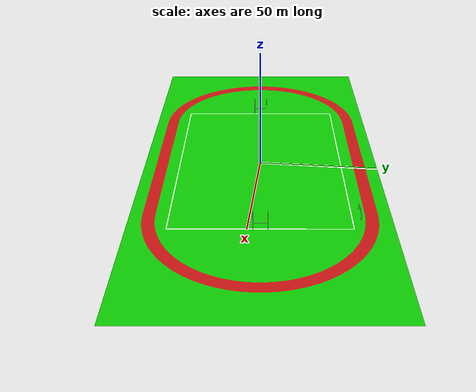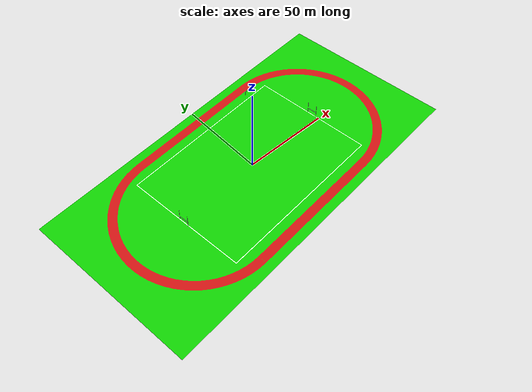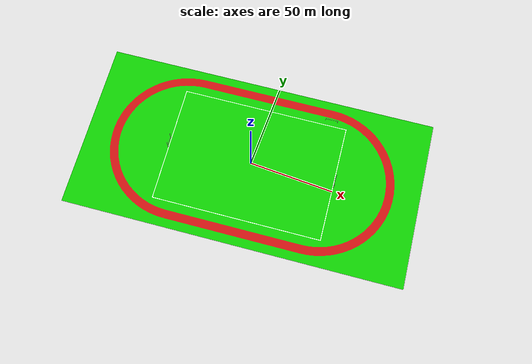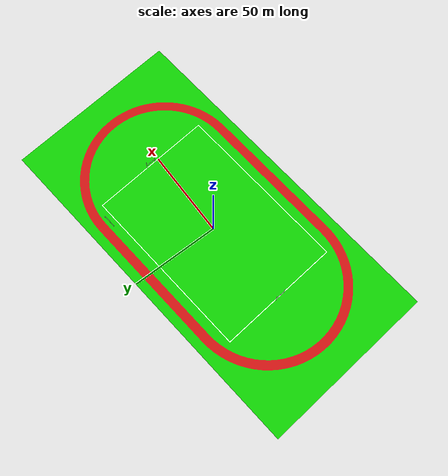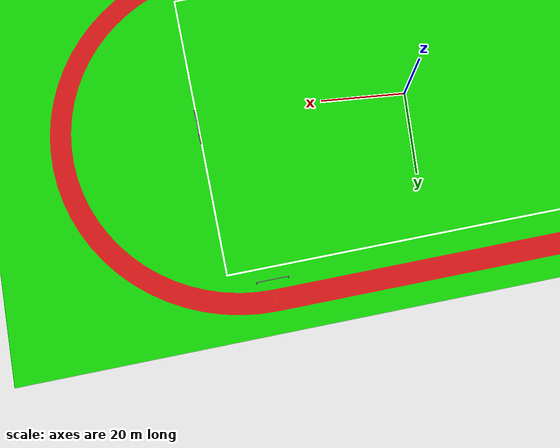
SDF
<?xml version="1.0" ?>
<sdf version="1.5">
  <!-- We use a custom world for the rrbot so that the camera angle is launched correctly -->

  <world name="default">

    <!-- Global light source -->
    <include>
      <uri>model://sun</uri>
    </include>

  <model name="ground_plane">
	<pose>0 0 0 0 0 0.1</pose>
    <static>true</static>
    <link name="link">
      <collision name="collision">
        <geometry>
          <plane>
            <normal>0 0 1</normal>
            <size>150 100</size>
          </plane>
        </geometry>
        <surface>
          <contact>
             <collide_bitmask>0xffff</collide_bitmask>
          </contact>
          <friction>
            <ode>
              <mu>100</mu>
              <mu2>50</mu2>
            </ode>
          </friction>
        </surface>
      </collision>
      <visual name="visual">
        <cast_shadows>false</cast_shadows>
        <geometry>
          <mesh>

          	<uri>model://robot_saturne/meshes/terrain_3.dae</uri>
			<scale>1 1 1</scale>
      	  </mesh>
        </geometry>
      </visual>
    </link>
  </model>

  <include>
  	<pose>36 41.8 0 0.000000 0 1.67</pose>
	<uri>model://poteaux_foot</uri>
  </include>

<include>
  	<pose>-49.75 -5 0 0.000000 0 0.1</pose>
	<uri>model://poteaux_rugby</uri>
  </include>

<include>
  	<pose>49.75 5 0 0.000000 0 0.1</pose>
	<uri>model://poteaux_rugby</uri>
  </include>

    <!-- Focus camera on tall pendulum -->
    <gui fullscreen='0'>
      <camera name='user_camera'>
        <pose>4.927360 -4.376610 3.740080 0.000000 0.275643 2.356190</pose>
        <view_controller>orbit</view_controller>
      </camera>
    </gui>

  </world>
</sdf>

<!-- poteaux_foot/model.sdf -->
<sdf version='1.4'>
  <model name="Poteaux_foot">
	  <static>true</static>

	  <link name='poteau_droit'>
      <pose>0 -3.66 0 0 0 0</pose>

      <collision name='collision'>
        <geometry>
           <box>
            <size>0.2 0.2 8</size>
          </box>
        </geometry>
      </collision>

      <visual name='visual'>
          <pose>0 3.66 0 0 0 0</pose>

        	<geometry>
          	<mesh>
          		<uri>model://poteaux_foot/meshes/poteaux_foot.dae</uri>
          		<scale>1 1 1</scale>
        	</mesh>

        	</geometry>
      </visual>
	  </link>

    <link name='poteau_gauche'>
      <pose>0 3.66 0 0 0 0</pose>

      <collision name='collision'>
        <geometry>
           <box>
            <size>0.2 0.2 8</size>
          </box>
        </geometry>
      </collision>

    </link>
  </model>
</sdf>

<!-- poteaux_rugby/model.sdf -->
<sdf version='1.5'>
  <model name="Poteaux_rugby">
	  <static>true</static>

	  <link name='poteau_droit'>
      <pose>0 -2.8 0 0 0 0</pose>

      <collision name='collision'>
        <geometry>
           <box>
            <size>0.2 0.2 8</size>
          </box>
        </geometry>
      </collision>

      <visual name='visual'>
          <pose>0 2.8 0 0 0 0</pose>

        	<geometry>
          	<mesh>
          		<uri>model://poteaux_rugby/meshes/poteaux_rugby.dae</uri>
          		<scale>1 1 1</scale>
        	</mesh>

        	</geometry>
      </visual>
	  </link>

    <link name='poteau_gauche'>
      <pose>0 2.8 0 0 0 0</pose>

      <collision name='collision'>
        <geometry>
           <box>
            <size>0.2 0.2 8</size>
          </box>
        </geometry>
      </collision>

    </link>
  </model>
</sdf>
